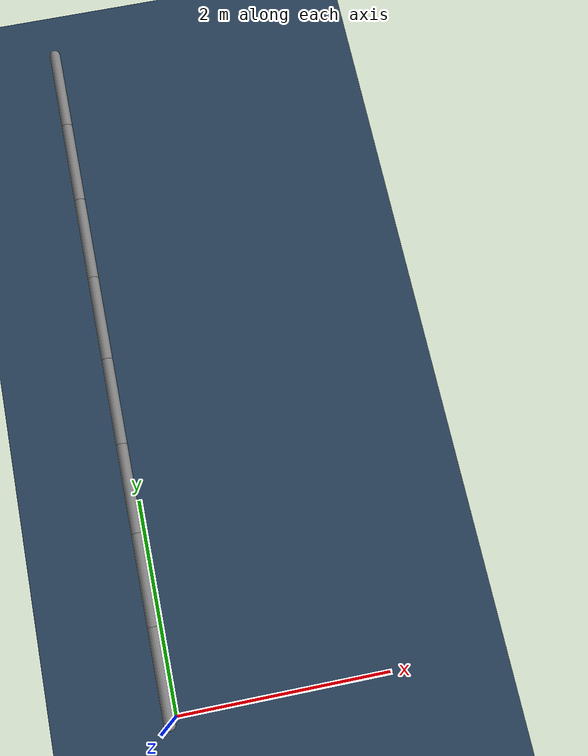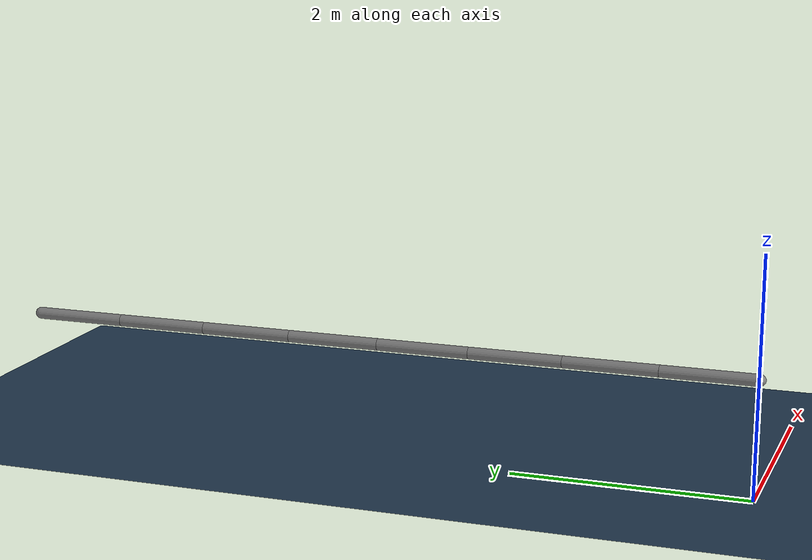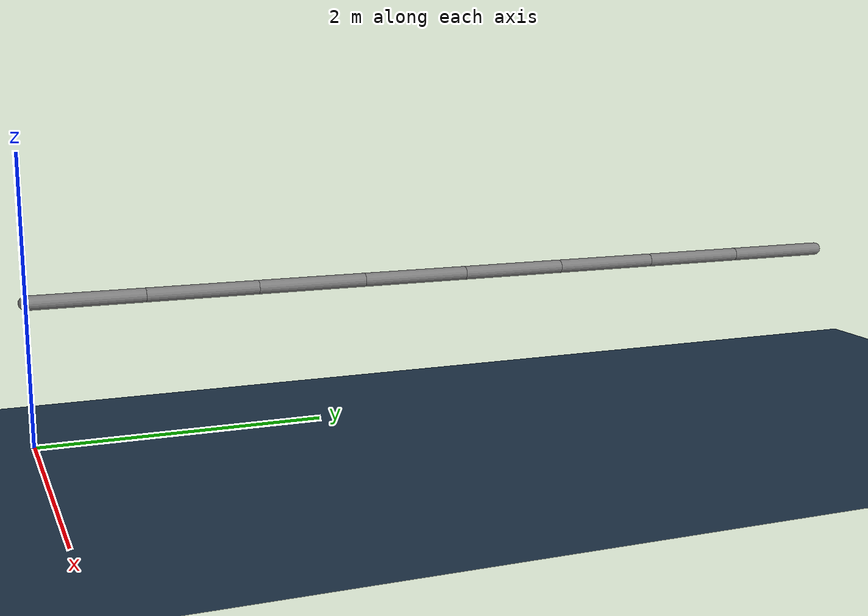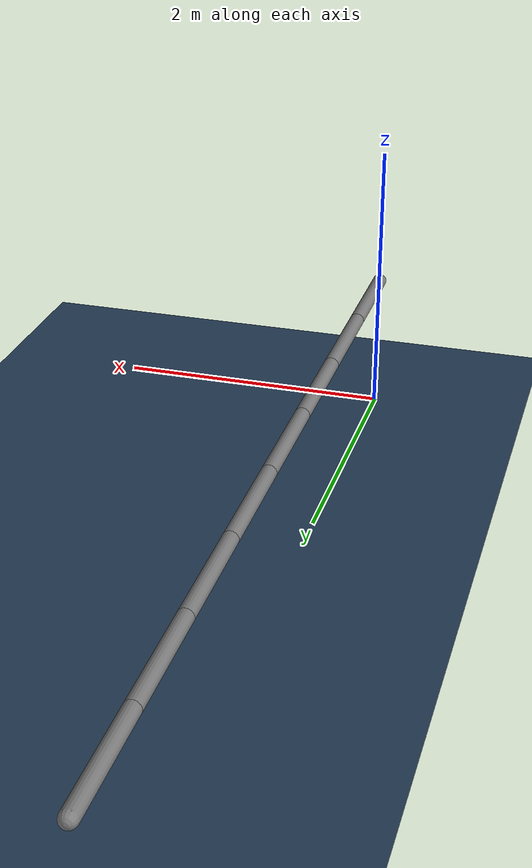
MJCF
<mujoco>
  <compiler meshdir="./mesh"/>
  <worldbody>
      <geom name="floor" size="0 0 .05" type="plane" material="grid" condim="3"/>
    <body name="Bone" pos="0.0 0.0 1.0" quat="1.0 0.0 0.0 0.0">
    <joint type="hinge" name="rx_Bone" axis="1 0 0" range="-9.99999970909292 9.99999970909292"/>
    <joint type="hinge" name="ry_Bone" axis="0 1 0" range="-9.99999970909292 9.99999970909292"/>
    <joint type="hinge" name="rz_Bone" axis="0 0 1" range="-9.99999970909292 9.99999970909292"/>
    <geom type="capsule" name="Bone_geom" size="0.05" fromto="0 0 0 0.0 0.7870888710021973 0.0"/>
      <body name="Bone.004" pos="0.0 0.7870888710021973 0.0" quat="1.0 0.0 0.0 0.0">
      <joint type="hinge" name="rx_Bone.004" axis="1 0 0" range="-9.99999970909292 9.99999970909292"/>
      <joint type="hinge" name="ry_Bone.004" axis="0 1 0" range="-9.99999970909292 9.99999970909292"/>
      <joint type="hinge" name="rz_Bone.004" axis="0 0 1" range="-9.99999970909292 9.99999970909292"/>
      <geom type="capsule" name="Bone.004_geom" size="0.05" fromto="0 0 0 0.0 0.7870892286300659 0.0"/>
        <body name="Bone.002" pos="0.0 0.7870892286300659 0.0" quat="1.0 0.0 0.0 0.0">
        <joint type="hinge" name="rx_Bone.002" axis="1 0 0" range="-9.99999970909292 9.99999970909292"/>
        <joint type="hinge" name="ry_Bone.002" axis="0 1 0" range="-9.99999970909292 9.99999970909292"/>
        <joint type="hinge" name="rz_Bone.002" axis="0 0 1" range="-9.99999970909292 9.99999970909292"/>
        <geom type="capsule" name="Bone.002_geom" size="0.05" fromto="0 0 0 0.0 0.7870889902114868 0.0"/>
          <body name="Bone.006" pos="0.0 0.7870889902114868 0.0" quat="1.0 0.0 0.0 0.0">
          <joint type="hinge" name="rx_Bone.006" axis="1 0 0" range="-9.99999970909292 9.99999970909292"/>
          <joint type="hinge" name="ry_Bone.006" axis="0 1 0" range="-9.99999970909292 9.99999970909292"/>
          <joint type="hinge" name="rz_Bone.006" axis="0 0 1" range="-9.99999970909292 9.99999970909292"/>
          <geom type="capsule" name="Bone.006_geom" size="0.05" fromto="0 0 0 0.0 0.7870891094207764 0.0"/>
            <body name="Bone.001" pos="0.0 0.7870891094207764 0.0" quat="1.0 0.0 0.0 0.0">
            <joint type="hinge" name="rx_Bone.001" axis="1 0 0" range="-9.99999970909292 9.99999970909292"/>
            <joint type="hinge" name="ry_Bone.001" axis="0 1 0" range="-9.99999970909292 9.99999970909292"/>
            <joint type="hinge" name="rz_Bone.001" axis="0 0 1" range="-9.99999970909292 9.99999970909292"/>
            <geom type="capsule" name="Bone.001_geom" size="0.05" fromto="0 0 0 0.0 0.7870891094207764 0.0"/>
              <body name="Bone.005" pos="0.0 0.7870891094207764 0.0" quat="1.0 0.0 0.0 0.0">
              <joint type="hinge" name="rx_Bone.005" axis="1 0 0" range="-9.99999970909292 9.99999970909292"/>
              <joint type="hinge" name="ry_Bone.005" axis="0 1 0" range="-9.99999970909292 9.99999970909292"/>
              <joint type="hinge" name="rz_Bone.005" axis="0 0 1" range="-9.99999970909292 9.99999970909292"/>
              <geom type="capsule" name="Bone.005_geom" size="0.05" fromto="0 0 0 0.0 0.7870888710021973 0.0"/>
                <body name="Bone.003" pos="0.0 0.7870888710021973 0.0" quat="1.0 0.0 0.0 0.0">
                <joint type="hinge" name="rx_Bone.003" axis="1 0 0" range="-9.99999970909292 9.99999970909292"/>
                <joint type="hinge" name="ry_Bone.003" axis="0 1 0" range="-9.99999970909292 9.99999970909292"/>
                <joint type="hinge" name="rz_Bone.003" axis="0 0 1" range="-9.99999970909292 9.99999970909292"/>
                <geom type="capsule" name="Bone.003_geom" size="0.05" fromto="0 0 0 0.0 0.7870888710021973 0.0"/>
                  <body name="Bone.007" pos="0.0 0.7870888710021973 0.0" quat="1.0 0.0 0.0 0.0">
                  <joint type="hinge" name="rx_Bone.007" axis="1 0 0" range="-9.99999970909292 9.99999970909292"/>
                  <joint type="hinge" name="ry_Bone.007" axis="0 1 0" range="-9.99999970909292 9.99999970909292"/>
                  <joint type="hinge" name="rz_Bone.007" axis="0 0 1" range="-9.99999970909292 9.99999970909292"/>
                  <geom type="capsule" name="Bone.007_geom" size="0.05" fromto="0 0 0 0.0 0.7870888710021973 0.0"/>
                  </body>
                </body>
              </body>
            </body>
          </body>
        </body>
      </body>
    </body>
  </worldbody>
<asset>
<texture name="grid" type="2d" builtin="checker" width="512" height="512" rgb1=".1 .2 .3" rgb2=".2 .3 .4"/>
<material name="grid" texture="grid" texrepeat="1 1" texuniform="true" reflectance=".2"/>
  </asset></mujoco>
